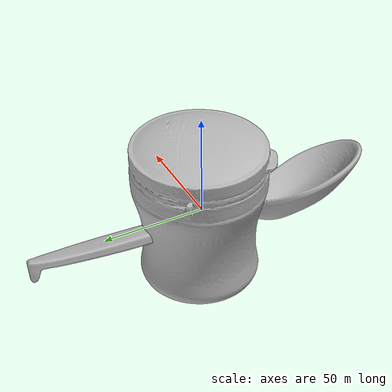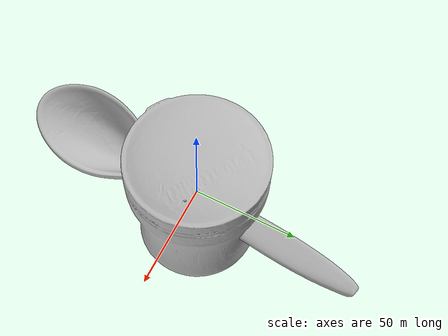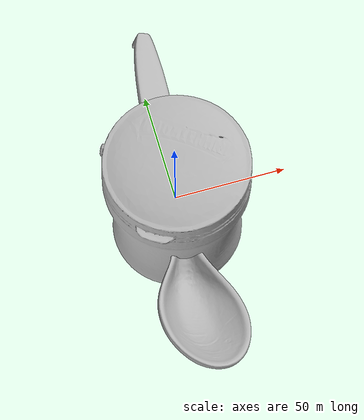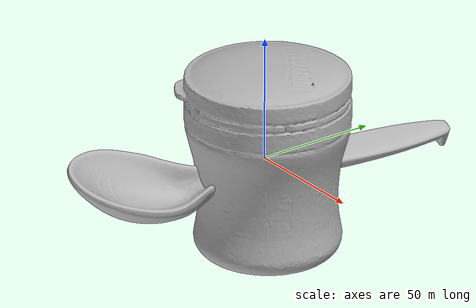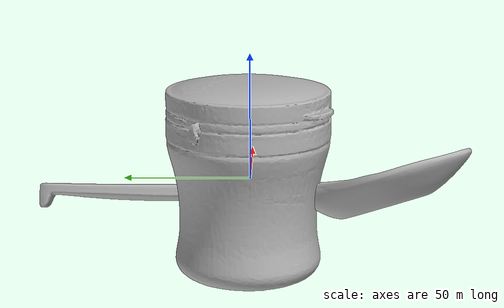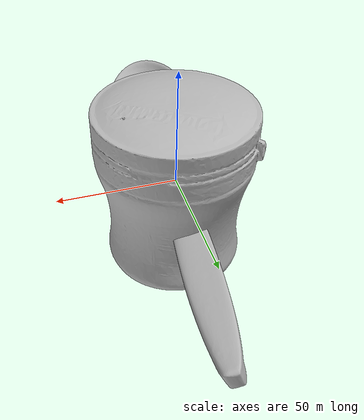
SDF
<sdf version="1.4">
 <world name="default">
  <light name="light1" type="point">
   <pose>0 0 1 0 0 0</pose>
   <diffuse>3 3 3 1</diffuse>
   <specular>3 3 3 1</specular>
  </light>
  <light name="light2" type="point">
   <pose>0 0.5 2 0 0 0</pose>
   <diffuse>1 1 1 1</diffuse>
   <specular>1 1 1 1</specular>
  </light>
  <light name="light3" type="point">
   <pose>0 0.5 2 0 0 0</pose>
   <diffuse>3 3 3 1</diffuse>
   <specular>3 3 3 1</specular>
  </light>
  <scene><ambient>0.7 0.7 0.7</ambient></scene>
  <model name="bottle1">
   <link name="link_bottle1">
    <collision name="default">
     <geometry>
      <mesh><uri>model://green_arrow/collision_meshes/collision.obj</uri><scale>1.0 1.0 1.0</scale></mesh>
     </geometry>
     <surface>
      <friction><ode><mu>0.5</mu><mu2>0.5</mu2></ode></friction>
      <contact><ode><max_vel>0</max_vel><min_depth>0.0001</min_depth><kp>1e8</kp></ode></contact>
     </surface>
    </collision>
    <visual name="default">
     <geometry>
      <mesh><uri>model://green_arrow/visual_meshes/visual.dae</uri><scale>1.0 1.0 1.0</scale></mesh>
     </geometry>
    </visual>
    <inertial>
     <mass>0.31872013211250305</mass>
     <pose>0.0005358478520065546 -0.0008270691032521427 0.002210969803854823 -0.06332250060756175 0.012985582117300467 0.6741007804522225</pose>
     <inertia>
      <ixx>0.00023120124</ixx>
      <iyy>0.000230851</iyy>
      <izz>0.0001492862</izz>
      <ixy>0</ixy>
      <ixz>0</ixz>
      <iyz>0</iyz>
     </inertia>
    </inertial>
   </link>
   <pose>0.19687604904174805 -0.0939936637878418 0.03896164521574974 0.045284633768505556 0.024256158622948793 1.8660871137778847</pose>
  </model>
  <model name="bottle2">
   <link name="link_bottle2">
    <collision name="default">
     <geometry>
      <mesh><uri>model://pigeon/collision_meshes/collision.obj</uri><scale>1.0 1.0 1.0</scale></mesh>
     </geometry>
     <surface>
      <friction><ode><mu>0.5</mu><mu2>0.5</mu2></ode></friction>
      <contact><ode><max_vel>0</max_vel><min_depth>0.0001</min_depth><kp>1e8</kp></ode></contact>
     </surface>
    </collision>
    <visual name="default">
     <geometry><mesh><uri>model://pigeon/visual_meshes/visual.dae</uri><scale>1.0 1.0 1.0</scale></mesh></geometry>
    </visual>
    <inertial>
     <mass>0.5279804468154907</mass>
     <pose>-9.675472392700613e-05 -0.0001927677367348224 -0.01593620702624321 -0.011704407495178063 -0.0012978199512556723 -0.04198835484465517</pose>
     <inertia>
      <ixx>0.0013198232</ixx>
      <iyy>0.0014089285</iyy>
      <izz>0.000271492</izz>
      <ixy>0</ixy>
      <ixz>0</ixz>
      <iyz>0</iyz>
     </inertia>
    </inertial>
   </link>
   <pose>0.26146212220191956 0.05319582298398018 0.09864478558301926 2.3438844917957178e-05 2.063687672677263e-06 -2.777148542283587</pose>
  </model>
  <model name="silverware1">
   <link name="link_silverware1">
    <collision name="default">
     <geometry>
      <mesh><uri>model://doraemon_spoon/collision_meshes/collision.obj</uri><scale>1.0 1.0 1.0</scale></mesh>
     </geometry>
     <surface>
      <friction><ode><mu>0.5</mu><mu2>0.5</mu2></ode></friction>
      <contact><ode><max_vel>0</max_vel><min_depth>0.0001</min_depth><kp>1e8</kp></ode></contact>
     </surface>
    </collision>
    <visual name="default">
     <geometry>
      <mesh><uri>model://doraemon_spoon/visual_meshes/visual.dae</uri><scale>1.0 1.0 1.0</scale></mesh>
     </geometry>
    </visual>
    <inertial>
     <mass>0.014849366620182991</mass>
     <pose>-0.022165074944496155 -0.0006374582299031317 -0.0033325457479804754 -0.009146985479672626 0.07380416127774835 -0.014123827206003371</pose>
     <inertia>
      <ixx>1.1631438e-06</ixx>
      <iyy>3.3035012e-05</iyy>
      <izz>3.359665e-05</izz>
      <ixy>0</ixy>
      <ixz>0</ixz>
      <iyz>0</iyz>
     </inertia>
    </inertial>
   </link>
   <pose>0.2886432409286499 -0.31178492307662964 0.014736367389559746 0.280120921404627 -0.010381667628641098 1.4810536152117717</pose>
  </model>
  <model name="stationery1">
   <link name="link_stationery1">
    <collision name="default">
     <geometry>
      <mesh><uri>model://correction_fuid/collision_meshes/collision.obj</uri><scale>1.0 1.0 1.0</scale></mesh>
     </geometry>
     <surface>
      <friction><ode><mu>0.5</mu><mu2>0.5</mu2></ode></friction>
      <contact><ode><max_vel>0</max_vel><min_depth>0.0001</min_depth><kp>1e8</kp></ode></contact>
     </surface>
    </collision>
    <visual name="default">
     <geometry>
      <mesh><uri>model://correction_fuid/visual_meshes/visual.dae</uri><scale>1.0 1.0 1.0</scale></mesh>
     </geometry>
    </visual>
    <inertial>
     <mass>0.03422689810395241</mass>
     <pose>-0.00012557733862195164 -0.0009722901741042733 -0.001618212671019137 -0.010846609605282003 0.019488228935667613 -0.015992456651572746</pose>
     <inertia>
      <ixx>3.3149332e-05</ixx>
      <iyy>2.0062398e-06</iyy>
      <izz>3.4012115e-05</izz>
      <ixy>0</ixy>
      <ixz>0</ixz>
      <iyz>0</iyz>
     </inertia>
    </inertial>
   </link>
   <pose>0.08124920725822449 0.05495372787117958 0.00966787151992321 -0.007299023517170623 -0.02234028370728249 -1.0736862235899245</pose>
  </model>
  <model name="bowl1">
   <link name="link_bowl1">
    <collision name="default">
     <geometry>
      <mesh><uri>model://doraemon_bowl/collision_meshes/collision.obj</uri><scale>1.0 1.0 1.0</scale></mesh>
     </geometry>
     <surface>
      <friction><ode><mu>0.5</mu><mu2>0.5</mu2></ode></friction>
      <contact><ode><max_vel>0</max_vel><min_depth>0.0001</min_depth><kp>1e8</kp></ode></contact>
     </surface>
    </collision>
    <visual name="default">
     <geometry>
      <mesh><uri>model://doraemon_bowl/visual_meshes/visual.dae</uri><scale>1.0 1.0 1.0</scale></mesh>
     </geometry>
    </visual>
    <inertial>
     <mass>0.10659078508615494</mass>
     <pose>-0.014629560522735119 0.00048571196384727955 -0.002086488762870431 -0.00509398386316645 -0.10568401530986889 -0.026426397124795446</pose>
     <inertia>
      <ixx>0.00014780516</ixx>
      <iyy>0.00019451023</iyy>
      <izz>0.00028617028</izz>
      <ixy>0</ixy>
      <ixz>0</ixz>
      <iyz>0</iyz>
     </inertia>
    </inertial>
   </link>
   <pose>0.24527552723884583 0.17915597558021545 0.025905489921569824 0.008593636374455484 0.006343899428939388 1.261318015799721</pose>
  </model>
  <model name="cup1">
   <link name="link_cup1">
    <collision name="default">
     <geometry>
      <mesh><uri>model://doraemon_cup/collision_meshes/collision.obj</uri><scale>1.0 1.0 1.0</scale></mesh>
     </geometry>
     <surface>
      <friction><ode><mu>0.5</mu><mu2>0.5</mu2></ode></friction>
      <contact><ode><max_vel>0</max_vel><min_depth>0.0001</min_depth><kp>1e8</kp></ode></contact>
     </surface>
    </collision>
    <visual name="default">
     <geometry>
      <mesh><uri>model://doraemon_cup/visual_meshes/visual.dae</uri><scale>1.0 1.0 1.0</scale></mesh>
     </geometry>
    </visual>
    <inertial>
     <mass>0.07019124925136566</mass>
     <pose>-0.0003292977053206414 -0.0016633619088679552 -0.0022522560320794582 0.19498543632694942 -0.013693723781048914 -0.3205469926711019</pose>
     <inertia>
      <ixx>9.599299e-05</ixx>
      <iyy>9.2830705e-05</iyy>
      <izz>7.5864096e-05</izz>
      <ixy>0</ixy>
      <ixz>0</ixz>
      <iyz>0</iyz>
     </inertia>
    </inertial>
   </link>
   <pose>0.24433031678199768 -0.2861132025718689 0.04623084515333176 -0.012529940451392909 -0.007894530670913114 -2.7225626488000483</pose>
  </model>
  <model name="plate1">
   <link name="link_plate1">
    <collision name="default">
     <geometry>
      <mesh><uri>model://hello_kitty_plate/collision_meshes/collision.obj</uri><scale>1.0 1.0 1.0</scale></mesh>
     </geometry>
     <surface>
      <friction><ode><mu>0.5</mu><mu2>0.5</mu2></ode></friction>
      <contact><ode><max_vel>0</max_vel><min_depth>0.0001</min_depth><kp>1e8</kp></ode></contact>
     </surface>
    </collision>
    <visual name="default">
     <geometry>
      <mesh><uri>model://hello_kitty_plate/visual_meshes/visual.dae</uri><scale>1.0 1.0 1.0</scale></mesh>
     </geometry>
    </visual>
    <inertial>
     <mass>0.03849242627620697</mass>
     <pose>0.007314295973628759 0.00028937432216480374 -0.0027947183698415756 -0.00010431794154861864 -0.007054443662422379 -0.014449020506613262</pose>
     <inertia>
      <ixx>7.4224925e-05</ixx>
      <iyy>0.00014008483</iyy>
      <izz>0.00021270475</izz>
      <ixy>0</ixy>
      <ixz>0</ixz>
      <iyz>0</iyz>
     </inertia>
    </inertial>
   </link>
   <pose>0.13145580887794495 -0.011628586798906326 0.008471700362861156 0.0037931696604150866 0.004214072466412935 0.49223782946017575</pose>
  </model>
  <model name="box4">
   <link name="link_box4">
    <collision name="default">
     <geometry>
      <mesh><uri>model://wooden_puzzle2/collision_meshes/collision.obj</uri><scale>1.0 1.0 1.0</scale></mesh>
     </geometry>
     <surface>
      <friction><ode><mu>0.5</mu><mu2>0.5</mu2></ode></friction>
      <contact><ode><max_vel>0</max_vel><min_depth>0.0001</min_depth><kp>1e8</kp></ode></contact>
     </surface>
    </collision>
    <visual name="default">
     <geometry>
      <mesh><uri>model://wooden_puzzle2/visual_meshes/visual.dae</uri><scale>1.0 1.0 1.0</scale></mesh>
     </geometry>
    </visual>
    <inertial>
     <mass>0.023858843371272087</mass>
     <pose>2.7402536943554878e-05 4.997663199901581e-05 6.587122334167361e-05 -0.1920347142936951 0.6112821219690274 -0.6338705729322873</pose>
     <inertia>
      <ixx>4.4351036e-06</ixx>
      <iyy>4.557319e-06</iyy>
      <izz>4.4924864e-06</izz>
      <ixy>0</ixy>
      <ixz>0</ixz>
      <iyz>0</iyz>
     </inertia>
    </inertial>
   </link>
   <pose>-0.08282531797885895 0.001996232895180583 0.016917740926146507 0.020848504018611002 0.0007209739389836164 -1.5251102692117915</pose>
  </model>
  <physics type="ode">
   <max_contacts>50</max_contacts>
   <ode>
    <solver><type>quick</type><iters>75</iters></solver>
    <constraints>
     <contact_max_correcting_vel>0</contact_max_correcting_vel>
     <contact_surface_layer>0</contact_surface_layer>
    </constraints>
   </ode>
  </physics>
 </world>
</sdf>
